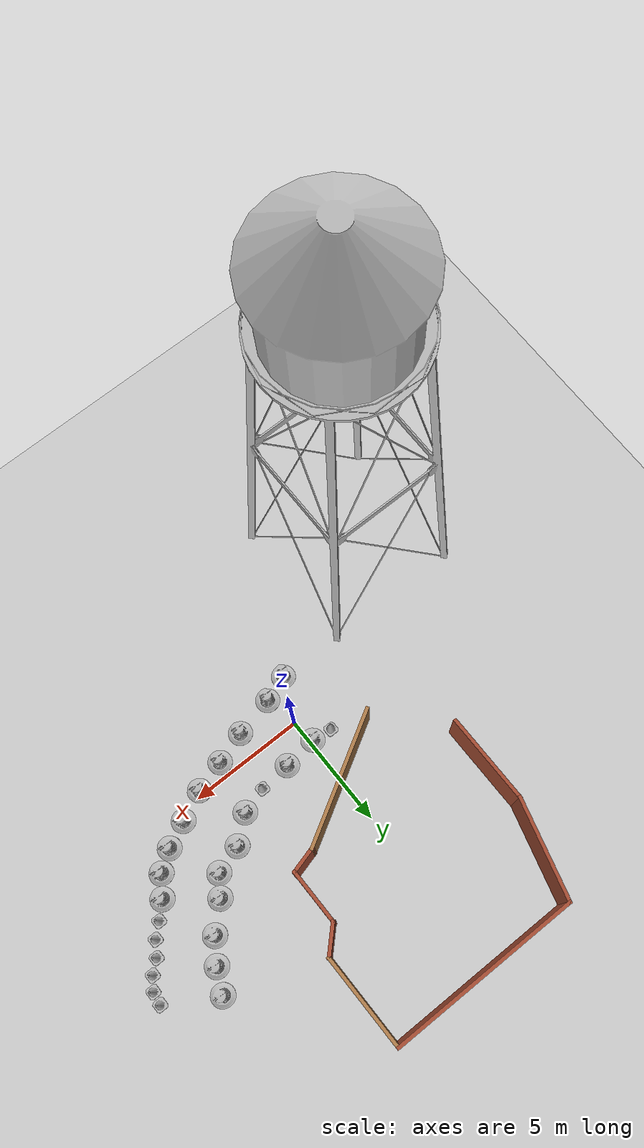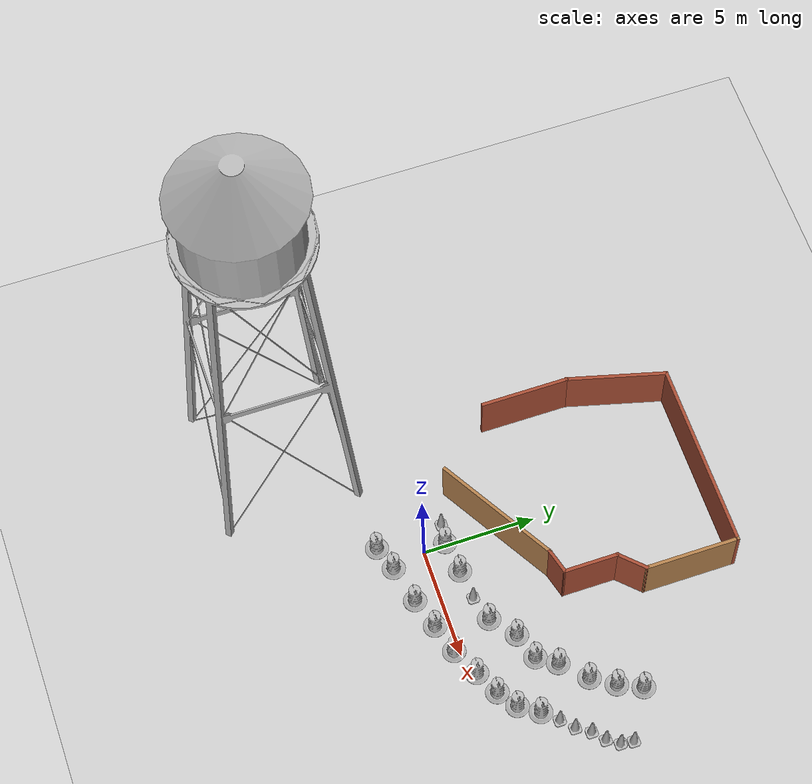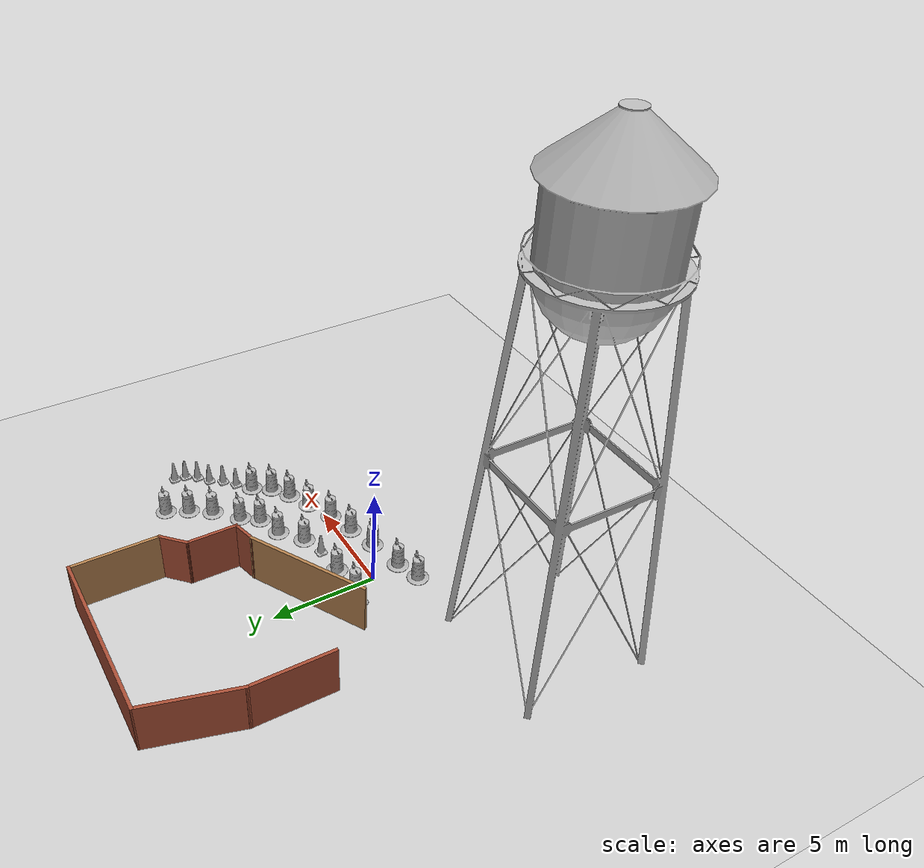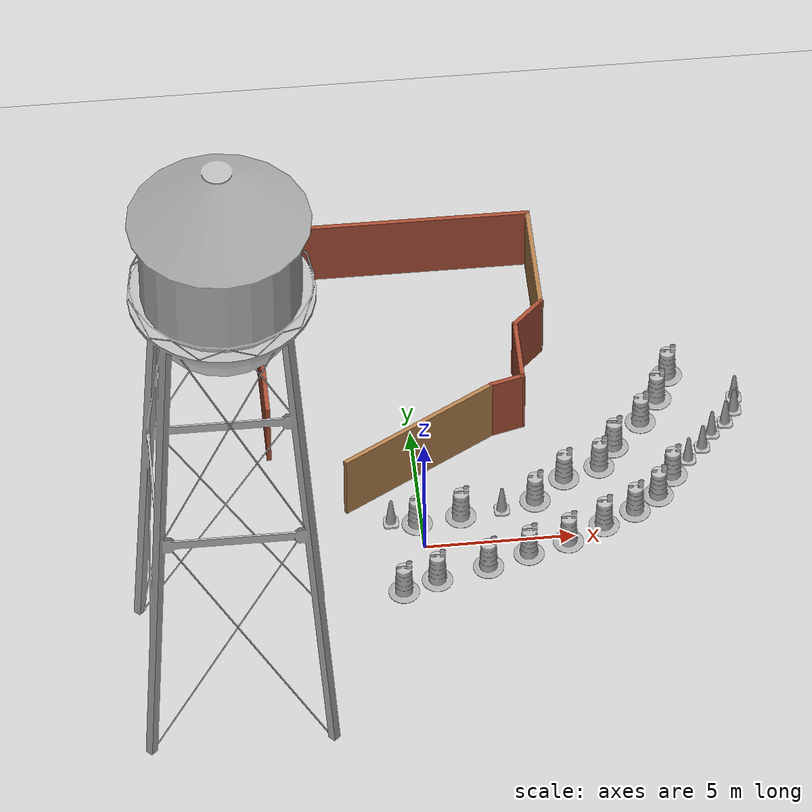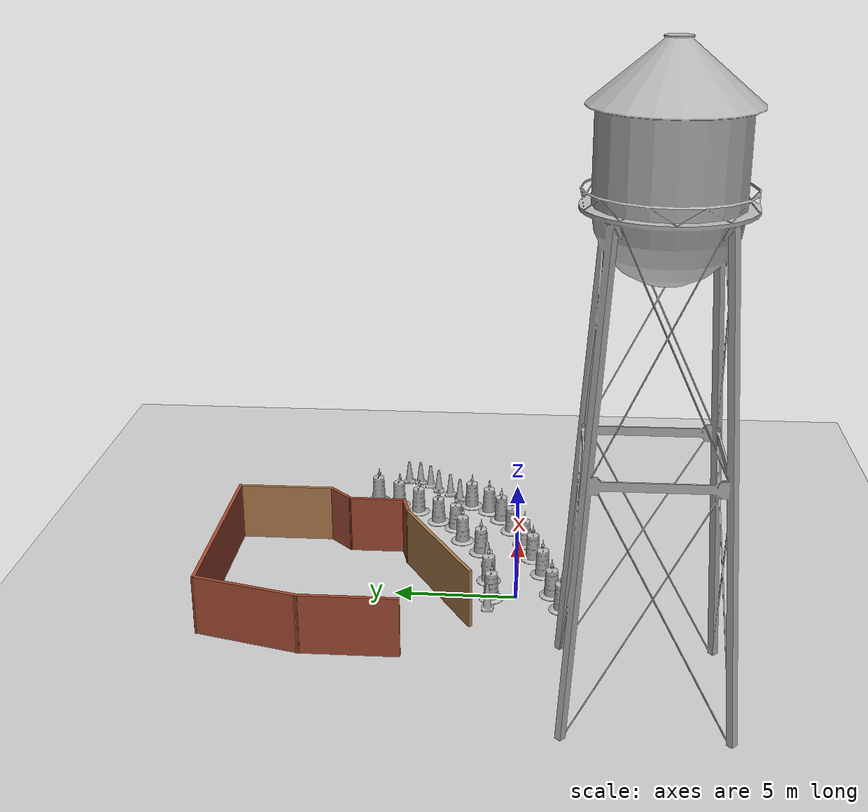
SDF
<sdf version="1.7">
 <world name="default">
  <light name="sun" type="directional">
   <pose>0 0 10 0 -0 0</pose>
   <diffuse>0.8 0.8 0.8 1</diffuse>
   <specular>0.2 0.2 0.2 1</specular>
   <attenuation>
    <range>1000</range>
    <constant>0.9</constant>
    <linear>0.01</linear>
    <quadratic>0.001</quadratic>
   </attenuation>
   <direction>-0.5 0.1 -0.9</direction>
   <spot><inner_angle>0</inner_angle><outer_angle>0</outer_angle><falloff>0</falloff></spot>
  </light>
  <model name="ground_plane">
   <static>1</static>
   <link name="link">
    <collision name="collision">
     <geometry><plane><normal>0 0 1</normal><size>100 100</size></plane></geometry>
     <surface>
      <contact><collide_bitmask>65535</collide_bitmask></contact>
      <friction><ode><mu>100</mu><mu2>50</mu2></ode></friction>
     </surface>
    </collision>
    <visual name="visual">
     <cast_shadows>0</cast_shadows>
     <geometry><plane><normal>0 0 1</normal><size>100 100</size></plane></geometry>
     <material>
      <script><uri>file://media/materials/scripts/gazebo.material</uri><name>Gazebo/Grey</name></script>
     </material>
    </visual>
   </link>
  </model>
  <gravity>0 0 -9.8</gravity>
  <magnetic_field>6e-06 2.3e-05 -4.2e-05</magnetic_field>
  <atmosphere type="adiabatic"/>
  <physics type="ode">
   <max_step_size>0.001</max_step_size>
   <real_time_factor>1</real_time_factor>
   <real_time_update_rate>1000</real_time_update_rate>
  </physics>
  <scene><ambient>0.4 0.4 0.4 1</ambient><background>0.7 0.7 0.7 1</background><shadows>1</shadows></scene>
  <audio><device>default</device></audio>
  <spherical_coordinates>
   <surface_model>EARTH_WGS84</surface_model>
   <latitude_deg>0</latitude_deg>
   <longitude_deg>0</longitude_deg>
   <elevation>0</elevation>
   <heading_deg>0</heading_deg>
  </spherical_coordinates>
  <model name="Construction Cone">
   <link name="link">
    <collision name="collision">
     <geometry>
      <mesh><scale>10 10 10</scale><uri>model://construction_cone/meshes/construction_cone.dae</uri></mesh>
     </geometry>
    </collision>
    <visual name="visual">
     <geometry>
      <mesh><scale>10 10 10</scale><uri>model://construction_cone/meshes/construction_cone.dae</uri></mesh>
     </geometry>
    </visual>
    <inertial>
     <inertia><ixx>1</ixx><ixy>0</ixy><ixz>0</ixz><iyy>1</iyy><iyz>0</iyz><izz>1</izz></inertia>
     <mass>1</mass>
    </inertial>
   </link>
   <pose>-1.00525 1.13466 -0 0 -1e-06 0</pose>
  </model>
  <model name="Construction Barrel">
   <link name="link">
    <inertial>
     <pose>0 0 0.4 0 -0 0</pose>
     <mass>500</mass>
     <inertia><ixx>51.2096</ixx><iyy>51.2096</iyy><izz>25</izz><ixy>0</ixy><ixz>0</ixz><iyz>0</iyz></inertia>
    </inertial>
    <collision name="collision">
     <geometry><mesh><uri>model://construction_barrel/meshes/construction_barrel.dae</uri></mesh></geometry>
    </collision>
    <visual name="visual">
     <geometry><mesh><uri>model://construction_barrel/meshes/construction_barrel.dae</uri></mesh></geometry>
    </visual>
   </link>
   <pose>0.279734 -1.45865 -2e-06 7e-06 -4e-06 -5.3e-05</pose>
  </model>
  <model name="Construction Barrel_0">
   <link name="link">
    <inertial>
     <pose>0 0 0.4 0 -0 0</pose>
     <mass>500</mass>
     <inertia><ixx>51.2096</ixx><iyy>51.2096</iyy><izz>25</izz><ixy>0</ixy><ixz>0</ixz><iyz>0</iyz></inertia>
    </inertial>
    <collision name="collision">
     <geometry><mesh><uri>model://construction_barrel/meshes/construction_barrel.dae</uri></mesh></geometry>
    </collision>
    <visual name="visual">
     <geometry><mesh><uri>model://construction_barrel/meshes/construction_barrel.dae</uri></mesh></geometry>
    </visual>
   </link>
   <pose>1.31575 1.19081 0 1e-06 1e-06 -4.1e-05</pose>
  </model>
  <model name="water_tower">
   <static>1</static>
   <link name="link">
    <collision name="collision">
     <geometry><mesh><uri>model://water_tower/meshes/water_tower.dae</uri></mesh></geometry>
    </collision>
    <visual name="visual">
     <geometry><mesh><uri>model://water_tower/meshes/water_tower.dae</uri></mesh></geometry>
    </visual>
   </link>
   <pose>-6.56833 -4.70062 0 0 -0 0</pose>
  </model>
  <model name="Construction Cone_1">
   <link name="link">
    <collision name="collision">
     <geometry>
      <mesh><scale>10 10 10</scale><uri>model://construction_cone/meshes/construction_cone.dae</uri></mesh>
     </geometry>
    </collision>
    <visual name="visual">
     <geometry>
      <mesh><scale>10 10 10</scale><uri>model://construction_cone/meshes/construction_cone.dae</uri></mesh>
     </geometry>
    </visual>
    <inertial>
     <inertia><ixx>1</ixx><ixy>0</ixy><ixz>0</ixz><iyy>1</iyy><iyz>0</iyz><izz>1</izz></inertia>
     <mass>1</mass>
    </inertial>
   </link>
   <pose>2.68733 1.31956 -1e-05 0 -0 0</pose>
  </model>
  <model name="Construction Barrel_1">
   <link name="link">
    <inertial>
     <pose>0 0 0.4 0 -0 0</pose>
     <mass>500</mass>
     <inertia><ixx>51.2096</ixx><iyy>51.2096</iyy><izz>25</izz><ixy>0</ixy><ixz>0</ixz><iyz>0</iyz></inertia>
    </inertial>
    <collision name="collision">
     <geometry><mesh><uri>model://construction_barrel/meshes/construction_barrel.dae</uri></mesh></geometry>
    </collision>
    <visual name="visual">
     <geometry><mesh><uri>model://construction_barrel/meshes/construction_barrel.dae</uri></mesh></geometry>
    </visual>
   </link>
   <pose>3.82081 1.64095 -0 0 0 -3.6e-05</pose>
  </model>
  <model name="Construction Barrel_2">
   <link name="link">
    <inertial>
     <pose>0 0 0.4 0 -0 0</pose>
     <mass>500</mass>
     <inertia><ixx>51.2096</ixx><iyy>51.2096</iyy><izz>25</izz><ixy>0</ixy><ixz>0</ixz><iyz>0</iyz></inertia>
    </inertial>
    <collision name="collision">
     <geometry><mesh><uri>model://construction_barrel/meshes/construction_barrel.dae</uri></mesh></geometry>
    </collision>
    <visual name="visual">
     <geometry><mesh><uri>model://construction_barrel/meshes/construction_barrel.dae</uri></mesh></geometry>
    </visual>
   </link>
   <pose>1.99667 -1.06617 -0 0 0 -3.5e-05</pose>
  </model>
  <model name="Construction Barrel_3">
   <link name="link">
    <inertial>
     <pose>0 0 0.4 0 -0 0</pose>
     <mass>500</mass>
     <inertia><ixx>51.2096</ixx><iyy>51.2096</iyy><izz>25</izz><ixy>0</ixy><ixz>0</ixz><iyz>0</iyz></inertia>
    </inertial>
    <collision name="collision">
     <geometry><mesh><uri>model://construction_barrel/meshes/construction_barrel.dae</uri></mesh></geometry>
    </collision>
    <visual name="visual">
     <geometry><mesh><uri>model://construction_barrel/meshes/construction_barrel.dae</uri></mesh></geometry>
    </visual>
   </link>
   <pose>3.37618 -0.633834 -0 0 0 -3.4e-05</pose>
  </model>
  <model name="Construction Barrel_4">
   <link name="link">
    <inertial>
     <pose>0 0 0.4 0 -0 0</pose>
     <mass>500</mass>
     <inertia><ixx>51.2096</ixx><iyy>51.2096</iyy><izz>25</izz><ixy>0</ixy><ixz>0</ixz><iyz>0</iyz></inertia>
    </inertial>
    <collision name="collision">
     <geometry><mesh><uri>model://construction_barrel/meshes/construction_barrel.dae</uri></mesh></geometry>
    </collision>
    <visual name="visual">
     <geometry><mesh><uri>model://construction_barrel/meshes/construction_barrel.dae</uri></mesh></geometry>
    </visual>
   </link>
   <pose>4.88184 2.51656 -0 0 0 -3.3e-05</pose>
  </model>
  <model name="Construction Barrel_4_clone">
   <link name="link">
    <inertial>
     <pose>0 0 0.4 0 -0 0</pose>
     <mass>500</mass>
     <inertia><ixx>51.2096</ixx><iyy>51.2096</iyy><izz>25</izz><ixy>0</ixy><ixz>0</ixz><iyz>0</iyz></inertia>
    </inertial>
    <collision name="collision">
     <geometry><mesh><uri>model://construction_barrel/meshes/construction_barrel.dae</uri></mesh></geometry>
    </collision>
    <visual name="visual">
     <geometry><mesh><uri>model://construction_barrel/meshes/construction_barrel.dae</uri></mesh></geometry>
    </visual>
   </link>
   <pose>6.10182 2.90977 -0 0 -0 0.051887</pose>
  </model>
  <model name="Construction Barrel_4_clone_0">
   <link name="link">
    <inertial>
     <pose>0 0 0.4 0 -0 0</pose>
     <mass>500</mass>
     <inertia><ixx>51.2096</ixx><iyy>51.2096</iyy><izz>25</izz><ixy>0</ixy><ixz>0</ixz><iyz>0</iyz></inertia>
    </inertial>
    <collision name="collision">
     <geometry><mesh><uri>model://construction_barrel/meshes/construction_barrel.dae</uri></mesh></geometry>
    </collision>
    <visual name="visual">
     <geometry><mesh><uri>model://construction_barrel/meshes/construction_barrel.dae</uri></mesh></geometry>
    </visual>
   </link>
   <pose>6.66467 3.72966 0.013346 -0.02101 0.016004 -0.071256</pose>
  </model>
  <model name="Construction Barrel_4_clone_1">
   <link name="link">
    <inertial>
     <pose>0 0 0.4 0 -0 0</pose>
     <mass>500</mass>
     <inertia><ixx>51.2096</ixx><iyy>51.2096</iyy><izz>25</izz><ixy>0</ixy><ixz>0</ixz><iyz>0</iyz></inertia>
    </inertial>
    <collision name="collision">
     <geometry><mesh><uri>model://construction_barrel/meshes/construction_barrel.dae</uri></mesh></geometry>
    </collision>
    <visual name="visual">
     <geometry><mesh><uri>model://construction_barrel/meshes/construction_barrel.dae</uri></mesh></geometry>
    </visual>
   </link>
   <pose>4.72471 -0.234552 -0 0 0 -2.6e-05</pose>
  </model>
  <model name="Construction Barrel_4_clone_2">
   <link name="link">
    <inertial>
     <pose>0 0 0.4 0 -0 0</pose>
     <mass>500</mass>
     <inertia><ixx>51.2096</ixx><iyy>51.2096</iyy><izz>25</izz><ixy>0</ixy><ixz>0</ixz><iyz>0</iyz></inertia>
    </inertial>
    <collision name="collision">
     <geometry><mesh><uri>model://construction_barrel/meshes/construction_barrel.dae</uri></mesh></geometry>
    </collision>
    <visual name="visual">
     <geometry><mesh><uri>model://construction_barrel/meshes/construction_barrel.dae</uri></mesh></geometry>
    </visual>
   </link>
   <pose>5.96918 0.351436 -0 0 0 -2.4e-05</pose>
  </model>
  <model name="Construction Barrel_4_clone_3">
   <link name="link">
    <inertial>
     <pose>0 0 0.4 0 -0 0</pose>
     <mass>500</mass>
     <inertia><ixx>51.2096</ixx><iyy>51.2096</iyy><izz>25</izz><ixy>0</ixy><ixz>0</ixz><iyz>0</iyz></inertia>
    </inertial>
    <collision name="collision">
     <geometry><mesh><uri>model://construction_barrel/meshes/construction_barrel.dae</uri></mesh></geometry>
    </collision>
    <visual name="visual">
     <geometry><mesh><uri>model://construction_barrel/meshes/construction_barrel.dae</uri></mesh></geometry>
    </visual>
   </link>
   <pose>7.0609 0.875011 -0 0 0 -2.3e-05</pose>
  </model>
  <model name="Construction Barrel_4_clone_4">
   <link name="link">
    <inertial>
     <pose>0 0 0.4 0 -0 0</pose>
     <mass>500</mass>
     <inertia><ixx>51.2096</ixx><iyy>51.2096</iyy><izz>25</izz><ixy>0</ixy><ixz>0</ixz><iyz>0</iyz></inertia>
    </inertial>
    <collision name="collision">
     <geometry><mesh><uri>model://construction_barrel/meshes/construction_barrel.dae</uri></mesh></geometry>
    </collision>
    <visual name="visual">
     <geometry><mesh><uri>model://construction_barrel/meshes/construction_barrel.dae</uri></mesh></geometry>
    </visual>
   </link>
   <pose>7.90385 1.4714 -2e-06 7e-06 -2e-06 4.3e-05</pose>
  </model>
  <model name="Construction Barrel_4_clone_5">
   <link name="link">
    <inertial>
     <pose>0 0 0.4 0 -0 0</pose>
     <mass>500</mass>
     <inertia><ixx>51.2096</ixx><iyy>51.2096</iyy><izz>25</izz><ixy>0</ixy><ixz>0</ixz><iyz>0</iyz></inertia>
    </inertial>
    <collision name="collision">
     <geometry><mesh><uri>model://construction_barrel/meshes/construction_barrel.dae</uri></mesh></geometry>
    </collision>
    <visual name="visual">
     <geometry><mesh><uri>model://construction_barrel/meshes/construction_barrel.dae</uri></mesh></geometry>
    </visual>
   </link>
   <pose>8.47456 2.30817 -1e-06 -5e-06 -3e-06 -0.00012</pose>
  </model>
  <model name="Construction Barrel_4_clone_6">
   <link name="link">
    <inertial>
     <pose>0 0 0.4 0 -0 0</pose>
     <mass>500</mass>
     <inertia><ixx>51.2096</ixx><iyy>51.2096</iyy><izz>25</izz><ixy>0</ixy><ixz>0</ixz><iyz>0</iyz></inertia>
    </inertial>
    <collision name="collision">
     <geometry><mesh><uri>model://construction_barrel/meshes/construction_barrel.dae</uri></mesh></geometry>
    </collision>
    <visual name="visual">
     <geometry><mesh><uri>model://construction_barrel/meshes/construction_barrel.dae</uri></mesh></geometry>
    </visual>
   </link>
   <pose>-0.851287 -1.85058 -0 0 0 -2e-05</pose>
  </model>
  <model name="Construction Barrel_4_clone_0_clone">
   <link name="link">
    <inertial>
     <pose>0 0 0.4 0 -0 0</pose>
     <mass>500</mass>
     <inertia><ixx>51.2096</ixx><iyy>51.2096</iyy><izz>25</izz><ixy>0</ixy><ixz>0</ixz><iyz>0</iyz></inertia>
    </inertial>
    <collision name="collision">
     <geometry><mesh><uri>model://construction_barrel/meshes/construction_barrel.dae</uri></mesh></geometry>
    </collision>
    <visual name="visual">
     <geometry><mesh><uri>model://construction_barrel/meshes/construction_barrel.dae</uri></mesh></geometry>
    </visual>
   </link>
   <pose>7.7001 4.74753 0 1e-06 -0 -0.070289</pose>
  </model>
  <model name="Construction Barrel_4_clone_0_clone_0">
   <link name="link">
    <inertial>
     <pose>0 0 0.4 0 -0 0</pose>
     <mass>500</mass>
     <inertia><ixx>51.2096</ixx><iyy>51.2096</iyy><izz>25</izz><ixy>0</ixy><ixz>0</ixz><iyz>0</iyz></inertia>
    </inertial>
    <collision name="collision">
     <geometry><mesh><uri>model://construction_barrel/meshes/construction_barrel.dae</uri></mesh></geometry>
    </collision>
    <visual name="visual">
     <geometry><mesh><uri>model://construction_barrel/meshes/construction_barrel.dae</uri></mesh></geometry>
    </visual>
   </link>
   <pose>8.35519 5.73532 0 0 0 -0.070283</pose>
  </model>
  <model name="Construction Barrel_4_clone_0_clone_1">
   <link name="link">
    <inertial>
     <pose>0 0 0.4 0 -0 0</pose>
     <mass>500</mass>
     <inertia><ixx>51.2096</ixx><iyy>51.2096</iyy><izz>25</izz><ixy>0</ixy><ixz>0</ixz><iyz>0</iyz></inertia>
    </inertial>
    <collision name="collision">
     <geometry><mesh><uri>model://construction_barrel/meshes/construction_barrel.dae</uri></mesh></geometry>
    </collision>
    <visual name="visual">
     <geometry><mesh><uri>model://construction_barrel/meshes/construction_barrel.dae</uri></mesh></geometry>
    </visual>
   </link>
   <pose>8.8355 6.76254 -2e-06 7e-06 -4e-06 -0.070271</pose>
  </model>
  <model name="Construction Barrel_4_clone_0_clone_2">
   <link name="link">
    <inertial>
     <pose>0 0 0.4 0 -0 0</pose>
     <mass>500</mass>
     <inertia><ixx>51.2096</ixx><iyy>51.2096</iyy><izz>25</izz><ixy>0</ixy><ixz>0</ixz><iyz>0</iyz></inertia>
    </inertial>
    <collision name="collision">
     <geometry><mesh><uri>model://construction_barrel/meshes/construction_barrel.dae</uri></mesh></geometry>
    </collision>
    <visual name="visual">
     <geometry><mesh><uri>model://construction_barrel/meshes/construction_barrel.dae</uri></mesh></geometry>
    </visual>
   </link>
   <pose>-0.150145 1.01748 -2e-06 2e-06 7e-06 -0.070263</pose>
  </model>
  <model name="Construction Cone_2">
   <link name="link">
    <collision name="collision">
     <geometry>
      <mesh><scale>10 10 10</scale><uri>model://construction_cone/meshes/construction_cone.dae</uri></mesh>
     </geometry>
    </collision>
    <visual name="visual">
     <geometry>
      <mesh><scale>10 10 10</scale><uri>model://construction_cone/meshes/construction_cone.dae</uri></mesh>
     </geometry>
    </visual>
    <inertial>
     <inertia><ixx>1</ixx><ixy>0</ixy><ixz>0</ixz><iyy>1</iyy><iyz>0</iyz><izz>1</izz></inertia>
     <mass>1</mass>
    </inertial>
   </link>
   <pose>9.08207 2.92158 -1e-05 -0 -0 -0</pose>
  </model>
  <model name="Construction Cone_2_clone">
   <link name="link">
    <collision name="collision">
     <geometry>
      <mesh><scale>10 10 10</scale><uri>model://construction_cone/meshes/construction_cone.dae</uri></mesh>
     </geometry>
    </collision>
    <visual name="visual">
     <geometry>
      <mesh><scale>10 10 10</scale><uri>model://construction_cone/meshes/construction_cone.dae</uri></mesh>
     </geometry>
    </visual>
    <inertial>
     <inertia><ixx>1</ixx><ixy>0</ixy><ixz>0</ixz><iyy>1</iyy><iyz>0</iyz><izz>1</izz></inertia>
     <mass>1</mass>
    </inertial>
   </link>
   <pose>9.61313 3.41034 -0 0 -1e-06 0</pose>
  </model>
  <model name="Construction Cone_2_clone_0">
   <link name="link">
    <collision name="collision">
     <geometry>
      <mesh><scale>10 10 10</scale><uri>model://construction_cone/meshes/construction_cone.dae</uri></mesh>
     </geometry>
    </collision>
    <visual name="visual">
     <geometry>
      <mesh><scale>10 10 10</scale><uri>model://construction_cone/meshes/construction_cone.dae</uri></mesh>
     </geometry>
    </visual>
    <inertial>
     <inertia><ixx>1</ixx><ixy>0</ixy><ixz>0</ixz><iyy>1</iyy><iyz>0</iyz><izz>1</izz></inertia>
     <mass>1</mass>
    </inertial>
   </link>
   <pose>10 4 -1e-05 0 -0 0</pose>
  </model>
  <model name="Construction Cone_2_clone_1">
   <link name="link">
    <collision name="collision">
     <geometry>
      <mesh><scale>10 10 10</scale><uri>model://construction_cone/meshes/construction_cone.dae</uri></mesh>
     </geometry>
    </collision>
    <visual name="visual">
     <geometry>
      <mesh><scale>10 10 10</scale><uri>model://construction_cone/meshes/construction_cone.dae</uri></mesh>
     </geometry>
    </visual>
    <inertial>
     <inertia><ixx>1</ixx><ixy>0</ixy><ixz>0</ixz><iyy>1</iyy><iyz>0</iyz><izz>1</izz></inertia>
     <mass>1</mass>
    </inertial>
   </link>
   <pose>10.5142 4.43827 -0 0 -0 0</pose>
  </model>
  <model name="Construction Cone_2_clone_2">
   <link name="link">
    <collision name="collision">
     <geometry>
      <mesh><scale>10 10 10</scale><uri>model://construction_cone/meshes/construction_cone.dae</uri></mesh>
     </geometry>
    </collision>
    <visual name="visual">
     <geometry>
      <mesh><scale>10 10 10</scale><uri>model://construction_cone/meshes/construction_cone.dae</uri></mesh>
     </geometry>
    </visual>
    <inertial>
     <inertia><ixx>1</ixx><ixy>0</ixy><ixz>0</ixz><iyy>1</iyy><iyz>0</iyz><izz>1</izz></inertia>
     <mass>1</mass>
    </inertial>
   </link>
   <pose>10.8652 4.95938 -0 0 -1e-06 0</pose>
  </model>
  <model name="Construction Cone_2_clone_3">
   <link name="link">
    <collision name="collision">
     <geometry>
      <mesh><scale>10 10 10</scale><uri>model://construction_cone/meshes/construction_cone.dae</uri></mesh>
     </geometry>
    </collision>
    <visual name="visual">
     <geometry>
      <mesh><scale>10 10 10</scale><uri>model://construction_cone/meshes/construction_cone.dae</uri></mesh>
     </geometry>
    </visual>
    <inertial>
     <inertia><ixx>1</ixx><ixy>0</ixy><ixz>0</ixz><iyy>1</iyy><iyz>0</iyz><izz>1</izz></inertia>
     <mass>1</mass>
    </inertial>
   </link>
   <pose>10.9427 5.51956 -0 0 -0 0</pose>
  </model>
  <light name="sun" type="directional">
   <pose>-28.3305 16.847 10 0 -0 0</pose>
   <diffuse>0.8 0.8 0.8 1</diffuse>
   <specular>0.2 0.2 0.2 1</specular>
   <attenuation>
    <range>1000</range>
    <constant>0.9</constant>
    <linear>0.01</linear>
    <quadratic>0.001</quadratic>
   </attenuation>
   <direction>-0.5 0.1 -0.9</direction>
  </light>
  <model name="my_building01">
   <pose>-0.028879 7.08743 0 0 -0 0</pose>
   <link name="Wall_0">
    <collision name="Wall_0_Collision">
     <geometry><box><size>6 0.15 2.5</size></box></geometry>
     <pose>0 0 1.25 0 -0 0</pose>
    </collision>
    <visual name="Wall_0_Visual">
     <pose>0 0 1.25 0 -0 0</pose>
     <geometry><box><size>6 0.15 2.5</size></box></geometry>
     <material>
      <script><uri>file://media/materials/scripts/gazebo.material</uri><name>Gazebo/Wood</name></script>
      <ambient>1 1 1 1</ambient>
     </material>
     <meta><layer>0</layer></meta>
    </visual>
    <pose>0.180589 -3.83935 0 0 -0 0.523599</pose>
   </link>
   <link name="Wall_1">
    <collision name="Wall_1_Collision">
     <geometry><box><size>1.25 0.15 2.5</size></box></geometry>
     <pose>0 0 1.25 0 -0 0</pose>
    </collision>
    <visual name="Wall_1_Visual">
     <pose>0 0 1.25 0 -0 0</pose>
     <geometry><box><size>1.25 0.15 2.5</size></box></geometry>
     <material>
      <script><uri>file://media/materials/scripts/gazebo.material</uri><name>Gazebo/Bricks</name></script>
      <ambient>1 1 1 1</ambient>
     </material>
     <meta><layer>0</layer></meta>
    </visual>
    <pose>3.24497 -2.2345 0 0 -0 0.261799</pose>
   </link>
   <link name="Wall_10">
    <collision name="Wall_10_Collision">
     <geometry><box><size>4.25 0.15 2.5</size></box></geometry>
     <pose>0 0 1.25 0 -0 0</pose>
    </collision>
    <visual name="Wall_10_Visual">
     <pose>0 0 1.25 0 -0 0</pose>
     <geometry><box><size>4.25 0.15 2.5</size></box></geometry>
     <material>
      <script><uri>file://media/materials/scripts/gazebo.material</uri><name>Gazebo/Wood</name></script>
      <ambient>1 1 1 1</ambient>
     </material>
     <meta><layer>0</layer></meta>
    </visual>
    <pose>4.73083 3.26245 0 0 -0 1.5708</pose>
   </link>
   <link name="Wall_11">
    <collision name="Wall_11_Collision">
     <geometry><box><size>8.5 0.15 2.5</size></box></geometry>
     <pose>0 0 1.25 0 -0 0</pose>
    </collision>
    <visual name="Wall_11_Visual">
     <pose>0 0 1.25 0 -0 0</pose>
     <geometry><box><size>8.5 0.15 2.5</size></box></geometry>
     <material>
      <script><uri>file://media/materials/scripts/gazebo.material</uri><name>Gazebo/Bricks</name></script>
      <ambient>1 1 1 1</ambient>
     </material>
     <meta><layer>0</layer></meta>
    </visual>
    <pose>0.555826 5.31245 0 0 -0 3.14159</pose>
   </link>
   <link name="Wall_12">
    <collision name="Wall_12_Collision">
     <geometry><box><size>4.5 0.15 2.5</size></box></geometry>
     <pose>0 0 1.25 0 -0 0</pose>
    </collision>
    <visual name="Wall_12_Visual">
     <pose>0 0 1.25 0 -0 0</pose>
     <geometry><box><size>4.5 0.15 2.5</size></box></geometry>
     <material>
      <script><uri>file://media/materials/scripts/gazebo.material</uri><name>Gazebo/Bricks</name></script>
      <ambient>1 1 1 1</ambient>
     </material>
     <meta><layer>0</layer></meta>
    </visual>
    <pose>-4.1821 3.21156 0 0 -0 -1.8326</pose>
   </link>
   <link name="Wall_13">
    <collision name="Wall_13_Collision">
     <geometry><box><size>4 0.15 2.5</size></box></geometry>
     <pose>0 0 1.25 0 -0 0</pose>
    </collision>
    <visual name="Wall_13_Visual">
     <pose>0 0 1.25 0 -0 0</pose>
     <geometry><box><size>4 0.15 2.5</size></box></geometry>
     <material>
      <script><uri>file://media/materials/scripts/gazebo.material</uri><name>Gazebo/Bricks</name></script>
      <ambient>1 1 1 1</ambient>
     </material>
     <meta><layer>0</layer></meta>
    </visual>
    <pose>-4.74504 -0.814331 0 0 -0 -1.5708</pose>
   </link>
   <link name="Wall_2">
    <collision name="Wall_2_Collision">
     <geometry><box><size>2.5 0.15 2.5</size></box></geometry>
     <pose>0 0 1.25 0 -0 0</pose>
    </collision>
    <visual name="Wall_2_Visual">
     <pose>0 0 1.25 0 -0 0</pose>
     <geometry><box><size>2.5 0.15 2.5</size></box></geometry>
     <material>
      <script><uri>file://media/materials/scripts/gazebo.material</uri><name>Gazebo/Bricks</name></script>
      <ambient>1 1 1 1</ambient>
     </material>
     <meta><layer>0</layer></meta>
    </visual>
    <pose>3.77623 -0.917148 0 0 -0 1.5708</pose>
   </link>
   <link name="Wall_6">
    <collision name="Wall_6_Collision">
     <geometry><box><size>1.5 0.15 2.5</size></box></geometry>
     <pose>0 0 1.25 0 -0 0</pose>
    </collision>
    <visual name="Wall_6_Visual">
     <pose>0 0 1.25 0 -0 0</pose>
     <geometry><box><size>1.5 0.15 2.5</size></box></geometry>
     <material>
      <script><uri>file://media/materials/scripts/gazebo.material</uri><name>Gazebo/Bricks</name></script>
      <ambient>1 1 1 1</ambient>
     </material>
     <meta><layer>0</layer></meta>
    </visual>
    <pose>4.25353 0.735149 0 0 -0 0.785398</pose>
   </link>
   <static>1</static>
  </model>
 </world>
</sdf>
